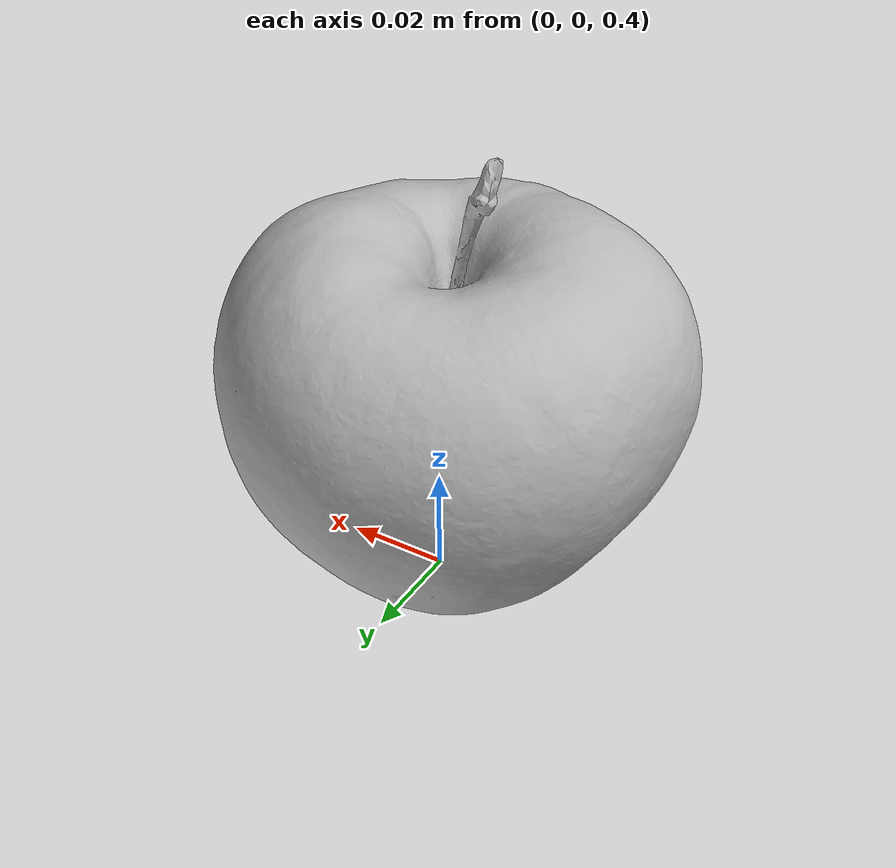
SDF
<?xml version="1.0"?>
<sdf version='1.10'>
    <model name="Apple">
        <pose> 0 0 0.5 0 0 0</pose>
        <static> false </static>

        <link name="apple_stem_link">
            <inertial>
                <mass>0.001</mass>
                <inertia>
                    <ixx>1e-5</ixx>
                    <iyy>1e-5</iyy>
                    <izz>1e-5</izz>
                </inertia>
            </inertial>
        </link>

        <link name="apple_link_x">
            <inertial>
                <mass>0.001</mass>
                <inertia>
                    <ixx>1e-5</ixx>
                    <iyy>1e-5</iyy>
                    <izz>1e-5</izz>
                </inertia>
            </inertial>
        </link>

        <joint name="apple_stem_joint" type="revolute">
            <parent>apple_stem_link</parent>
            <child>apple_link_x</child>
            <pose>0 0 0.1 0 0 0</pose>
            <axis>
                <xyz>1 0 0</xyz>
                <limit>
                    <lower>-0.7</lower>
                    <upper>0.7</upper>
                </limit>
                <dynamics>
                    <damping>0.003</damping>
                </dynamics>
            </axis>
        </joint>

        <joint name="apple_joint_y" type="revolute">
            <parent>apple_link_x</parent>
            <child>apple_link</child>
            <pose>0 0 0.1 0 0 0</pose>
            <axis>
                <xyz>0 1 0</xyz>
                <limit>
                    <lower>-0.7</lower>
                    <upper>0.7</upper>
                </limit>
                <dynamics>
                    <damping>0.003</damping>
                </dynamics>
            </axis>
        </joint>

        <link name="apple_link">
            <pose>0 0 -0.1 1.57 0 0</pose>
            <collision name="apple_collision">
                <geometry>
                    <mesh>
                        <uri>model://Apple/meshes/apple.obj</uri>
                        <scale>0.7 0.7 0.7</scale>
                    </mesh>
                </geometry>
                <surface>
                    <friction>
                        <ode>
                            <mu>4.0</mu>
                            <mu2>4.0</mu2>
                        </ode>
                    </friction>
                </surface>
            </collision>

            <visual name="apple_visual">
                <geometry>
                    <mesh>
                        <uri>model://Apple/meshes/apple.obj</uri>
                        <scale>0.7 0.7 0.7</scale>
                    </mesh>
                </geometry>
            </visual>

            <inertial>
                <mass> 0.125 </mass>
                <pose>0 0 0.03 0 0 0</pose>
                <inertia>
                    <ixx>0.0000984</ixx>
                    <ixy>0.0</ixy>
                    <ixz>0.0</ixz>
                    <iyy>0.0000984</iyy>
                    <iyz>0.0</iyz>
                    <izz>0.0000984</izz>
                </inertia>
            </inertial>
        </link>
    </model>
</sdf>
